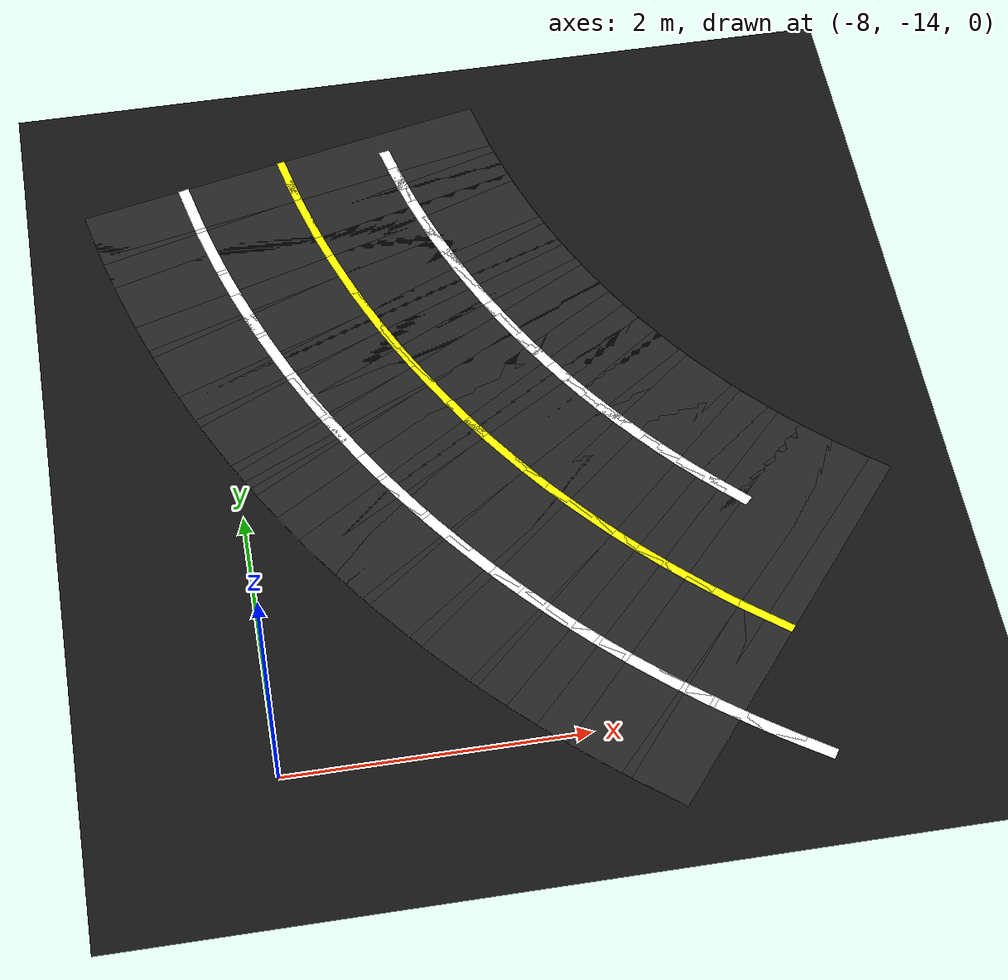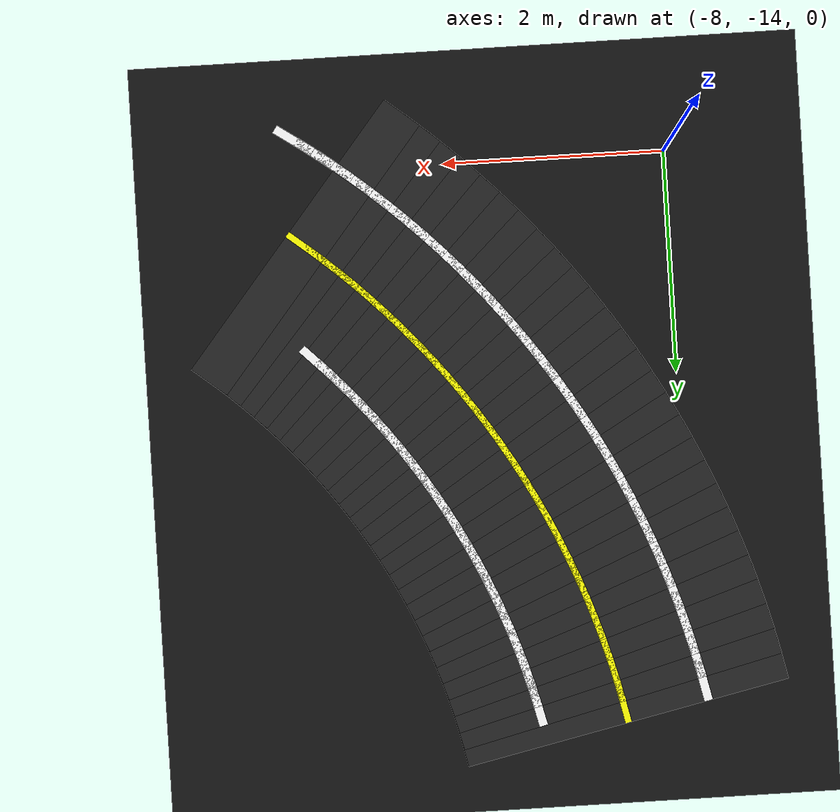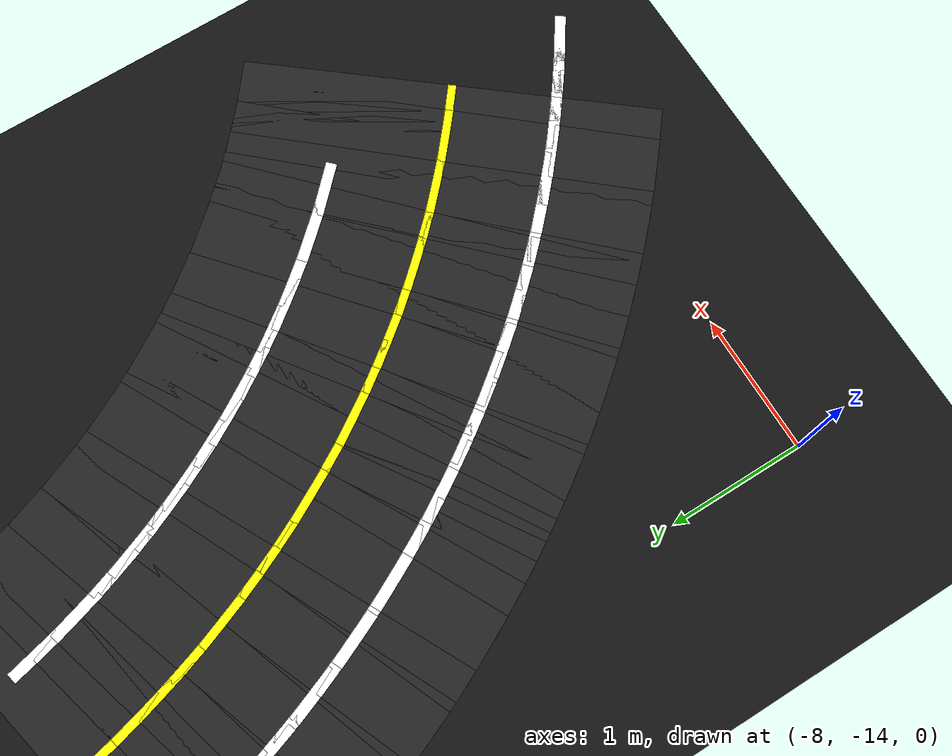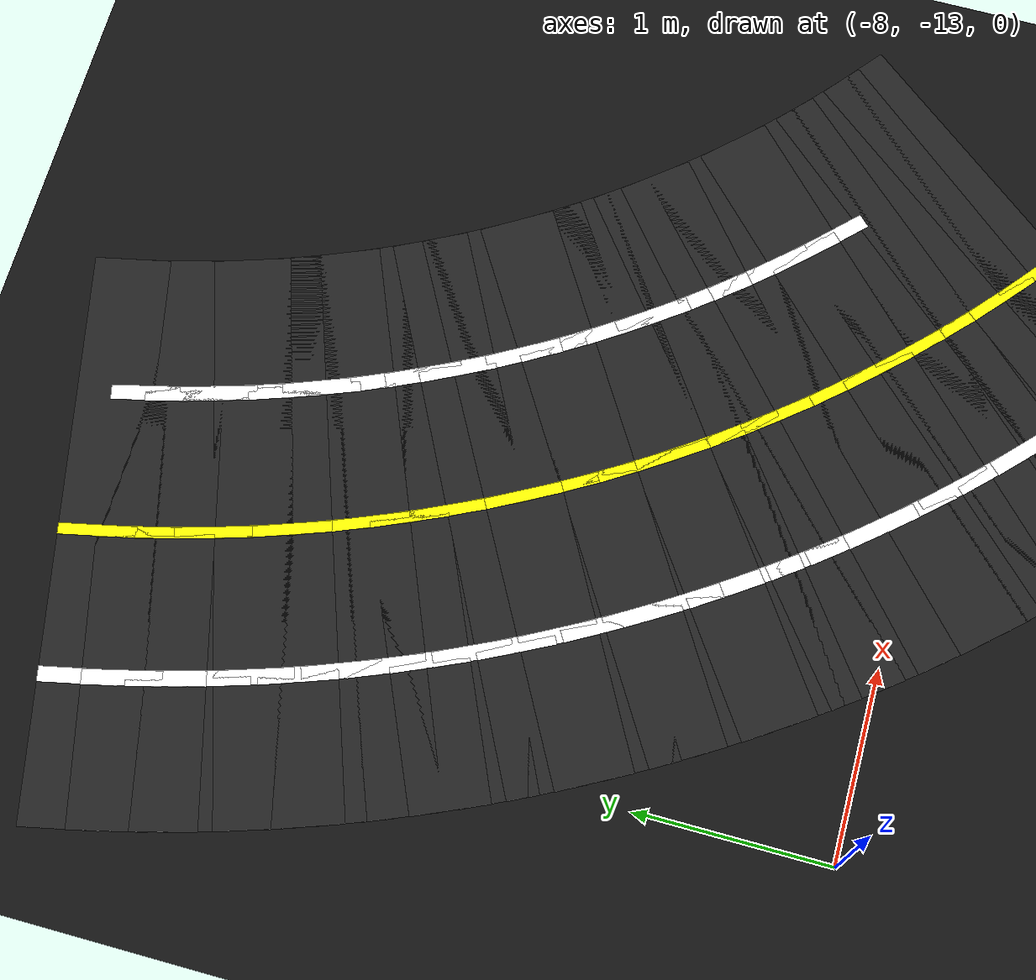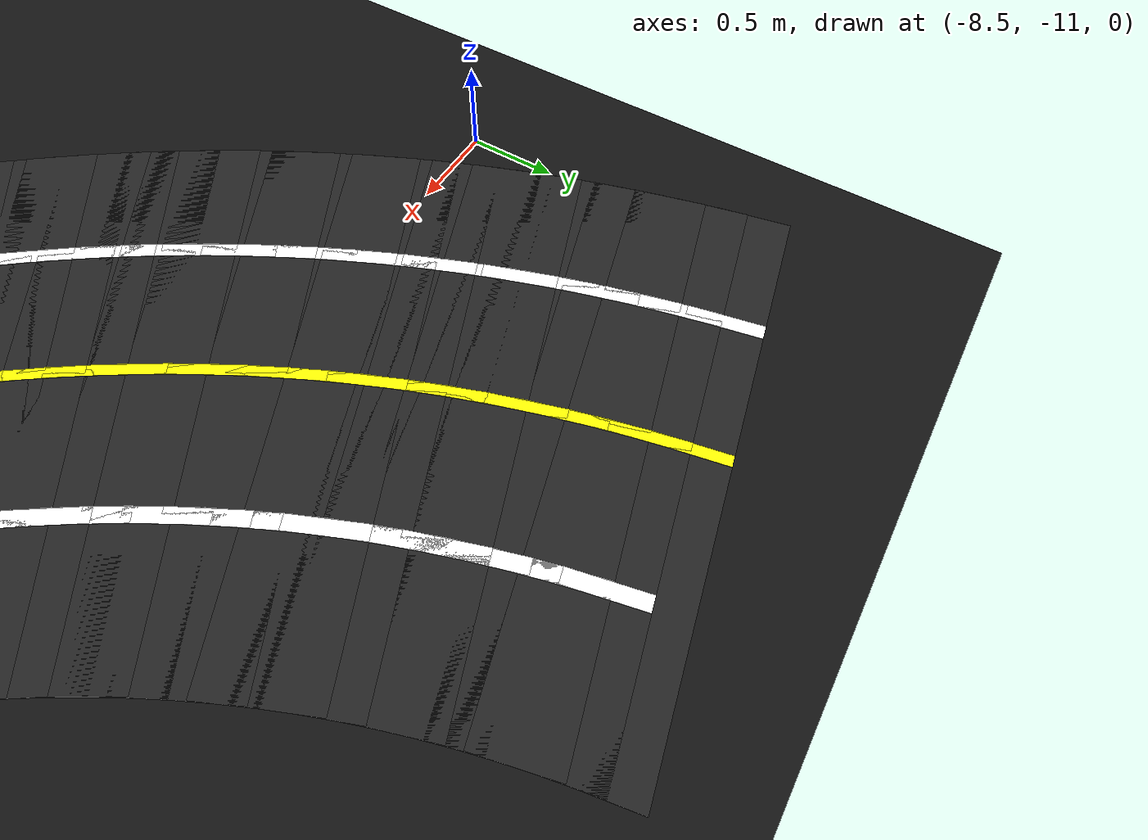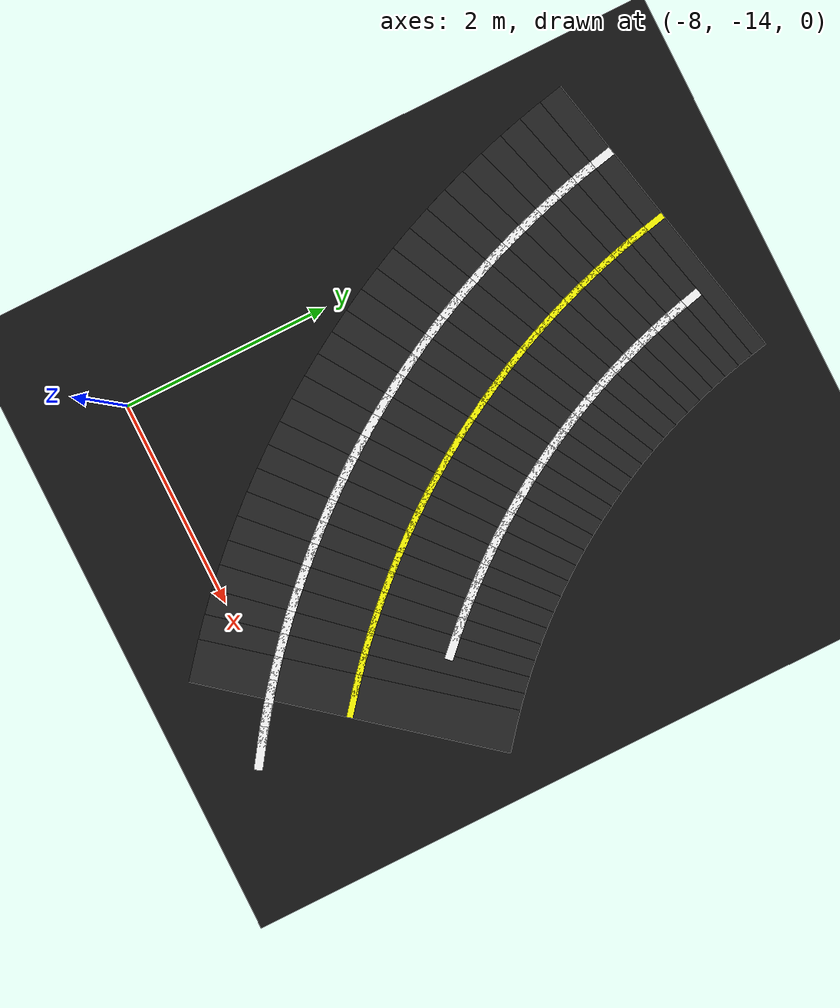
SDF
<sdf version="1.6">
 <world name="figure8_world">
  <model name="ground_plane">
   <static>true</static>
   <link name="link">
    <collision name="collision">
     <geometry><plane><normal>0 0 1</normal><size>120 120</size></plane></geometry>
    </collision>
    <visual name="visual">
     <geometry><plane><normal>0 0 1</normal><size>120 120</size></plane></geometry>
     <material><ambient>0.08 0.08 0.08 1</ambient><diffuse>0.08 0.08 0.08 1</diffuse></material>
    </visual>
   </link>
  </model>
  <model name="seg_01089">
   <static>true</static>
   <pose>-4.6729 -14.2990 0.0030 0 0 2.5395</pose>
   <link name="link">
    <collision name="collision"><geometry><box><size>0.4000 0.0800 0.002</size></box></geometry></collision>
    <visual name="visual">
     <geometry><box><size>0.4000 0.0800 0.002</size></box></geometry>
     <material><ambient>1 1 1 1</ambient><diffuse>1 1 1 1</diffuse></material>
    </visual>
   </link>
  </model>
  <model name="seg_01093">
   <static>true</static>
   <pose>-4.8492 -14.1744 0.0030 0 0 2.5133</pose>
   <link name="link">
    <collision name="collision"><geometry><box><size>0.4000 0.0800 0.002</size></box></geometry></collision>
    <visual name="visual">
     <geometry><box><size>0.4000 0.0800 0.002</size></box></geometry>
     <material><ambient>1 1 1 1</ambient><diffuse>1 1 1 1</diffuse></material>
    </visual>
   </link>
  </model>
  <model name="seg_01097">
   <static>true</static>
   <pose>-5.0223 -14.0452 0.0030 0 0 2.4871</pose>
   <link name="link">
    <collision name="collision"><geometry><box><size>0.4000 0.0800 0.002</size></box></geometry></collision>
    <visual name="visual">
     <geometry><box><size>0.4000 0.0800 0.002</size></box></geometry>
     <material><ambient>1 1 1 1</ambient><diffuse>1 1 1 1</diffuse></material>
    </visual>
   </link>
  </model>
  <model name="seg_01100">
   <static>true</static>
   <pose>-4.7199 -13.3286 0.0010 0 0 2.4609</pose>
   <link name="link">
    <collision name="collision"><geometry><box><size>0.4000 3.0000 0.002</size></box></geometry></collision>
    <visual name="visual">
     <geometry><box><size>0.4000 3.0000 0.002</size></box></geometry>
     <material><ambient>0.14 0.14 0.14 1</ambient><diffuse>0.14 0.14 0.14 1</diffuse></material>
    </visual>
   </link>
  </model>
  <model name="seg_01101">
   <static>true</static>
   <pose>-5.1919 -13.9115 0.0030 0 0 2.4609</pose>
   <link name="link">
    <collision name="collision"><geometry><box><size>0.4000 0.0800 0.002</size></box></geometry></collision>
    <visual name="visual">
     <geometry><box><size>0.4000 0.0800 0.002</size></box></geometry>
     <material><ambient>1 1 1 1</ambient><diffuse>1 1 1 1</diffuse></material>
    </visual>
   </link>
  </model>
  <model name="seg_01103">
   <static>true</static>
   <pose>-4.7199 -13.3286 0.0030 0 0 2.4609</pose>
   <link name="link">
    <collision name="collision"><geometry><box><size>0.4000 0.0600 0.002</size></box></geometry></collision>
    <visual name="visual">
     <geometry><box><size>0.4000 0.0600 0.002</size></box></geometry>
     <material><ambient>1 1 0 1</ambient><diffuse>1 1 0 1</diffuse></material>
    </visual>
   </link>
  </model>
  <model name="seg_01104">
   <static>true</static>
   <pose>-4.8709 -13.2030 0.0010 0 0 2.4347</pose>
   <link name="link">
    <collision name="collision"><geometry><box><size>0.4000 3.0000 0.002</size></box></geometry></collision>
    <visual name="visual">
     <geometry><box><size>0.4000 3.0000 0.002</size></box></geometry>
     <material><ambient>0.14 0.14 0.14 1</ambient><diffuse>0.14 0.14 0.14 1</diffuse></material>
    </visual>
   </link>
  </model>
  <model name="seg_01105">
   <static>true</static>
   <pose>-5.3579 -13.7733 0.0030 0 0 2.4347</pose>
   <link name="link">
    <collision name="collision"><geometry><box><size>0.4000 0.0800 0.002</size></box></geometry></collision>
    <visual name="visual">
     <geometry><box><size>0.4000 0.0800 0.002</size></box></geometry>
     <material><ambient>1 1 1 1</ambient><diffuse>1 1 1 1</diffuse></material>
    </visual>
   </link>
  </model>
  <model name="seg_01107">
   <static>true</static>
   <pose>-4.8709 -13.2030 0.0030 0 0 2.4347</pose>
   <link name="link">
    <collision name="collision"><geometry><box><size>0.4000 0.0600 0.002</size></box></geometry></collision>
    <visual name="visual">
     <geometry><box><size>0.4000 0.0600 0.002</size></box></geometry>
     <material><ambient>1 1 0 1</ambient><diffuse>1 1 0 1</diffuse></material>
    </visual>
   </link>
  </model>
  <model name="seg_01108">
   <static>true</static>
   <pose>-5.0185 -13.0736 0.0010 0 0 2.4086</pose>
   <link name="link">
    <collision name="collision"><geometry><box><size>0.4000 3.0000 0.002</size></box></geometry></collision>
    <visual name="visual">
     <geometry><box><size>0.4000 3.0000 0.002</size></box></geometry>
     <material><ambient>0.14 0.14 0.14 1</ambient><diffuse>0.14 0.14 0.14 1</diffuse></material>
    </visual>
   </link>
  </model>
  <model name="seg_01109">
   <static>true</static>
   <pose>-5.5203 -13.6309 0.0030 0 0 2.4086</pose>
   <link name="link">
    <collision name="collision"><geometry><box><size>0.4000 0.0800 0.002</size></box></geometry></collision>
    <visual name="visual">
     <geometry><box><size>0.4000 0.0800 0.002</size></box></geometry>
     <material><ambient>1 1 1 1</ambient><diffuse>1 1 1 1</diffuse></material>
    </visual>
   </link>
  </model>
  <model name="seg_01111">
   <static>true</static>
   <pose>-5.0185 -13.0736 0.0030 0 0 2.4086</pose>
   <link name="link">
    <collision name="collision"><geometry><box><size>0.4000 0.0600 0.002</size></box></geometry></collision>
    <visual name="visual">
     <geometry><box><size>0.4000 0.0600 0.002</size></box></geometry>
     <material><ambient>1 1 0 1</ambient><diffuse>1 1 0 1</diffuse></material>
    </visual>
   </link>
  </model>
  <model name="seg_01112">
   <static>true</static>
   <pose>-5.1627 -12.9403 0.0010 0 0 2.3824</pose>
   <link name="link">
    <collision name="collision"><geometry><box><size>0.4000 3.0000 0.002</size></box></geometry></collision>
    <visual name="visual">
     <geometry><box><size>0.4000 3.0000 0.002</size></box></geometry>
     <material><ambient>0.14 0.14 0.14 1</ambient><diffuse>0.14 0.14 0.14 1</diffuse></material>
    </visual>
   </link>
  </model>
  <model name="seg_01113">
   <static>true</static>
   <pose>-5.6789 -13.4843 0.0030 0 0 2.3824</pose>
   <link name="link">
    <collision name="collision"><geometry><box><size>0.4000 0.0800 0.002</size></box></geometry></collision>
    <visual name="visual">
     <geometry><box><size>0.4000 0.0800 0.002</size></box></geometry>
     <material><ambient>1 1 1 1</ambient><diffuse>1 1 1 1</diffuse></material>
    </visual>
   </link>
  </model>
  <model name="seg_01115">
   <static>true</static>
   <pose>-5.1627 -12.9403 0.0030 0 0 2.3824</pose>
   <link name="link">
    <collision name="collision"><geometry><box><size>0.4000 0.0600 0.002</size></box></geometry></collision>
    <visual name="visual">
     <geometry><box><size>0.4000 0.0600 0.002</size></box></geometry>
     <material><ambient>1 1 0 1</ambient><diffuse>1 1 0 1</diffuse></material>
    </visual>
   </link>
  </model>
  <model name="seg_01116">
   <static>true</static>
   <pose>-5.3033 -12.8033 0.0010 0 0 2.3562</pose>
   <link name="link">
    <collision name="collision"><geometry><box><size>0.4000 3.0000 0.002</size></box></geometry></collision>
    <visual name="visual">
     <geometry><box><size>0.4000 3.0000 0.002</size></box></geometry>
     <material><ambient>0.14 0.14 0.14 1</ambient><diffuse>0.14 0.14 0.14 1</diffuse></material>
    </visual>
   </link>
  </model>
  <model name="seg_01117">
   <static>true</static>
   <pose>-5.8336 -13.3336 0.0030 0 0 2.3562</pose>
   <link name="link">
    <collision name="collision"><geometry><box><size>0.4000 0.0800 0.002</size></box></geometry></collision>
    <visual name="visual">
     <geometry><box><size>0.4000 0.0800 0.002</size></box></geometry>
     <material><ambient>1 1 1 1</ambient><diffuse>1 1 1 1</diffuse></material>
    </visual>
   </link>
  </model>
  <model name="seg_01118">
   <static>true</static>
   <pose>-4.7730 -12.2730 0.0030 0 0 2.3562</pose>
   <link name="link">
    <collision name="collision"><geometry><box><size>0.4000 0.0800 0.002</size></box></geometry></collision>
    <visual name="visual">
     <geometry><box><size>0.4000 0.0800 0.002</size></box></geometry>
     <material><ambient>1 1 1 1</ambient><diffuse>1 1 1 1</diffuse></material>
    </visual>
   </link>
  </model>
  <model name="seg_01119">
   <static>true</static>
   <pose>-5.3033 -12.8033 0.0030 0 0 2.3562</pose>
   <link name="link">
    <collision name="collision"><geometry><box><size>0.4000 0.0600 0.002</size></box></geometry></collision>
    <visual name="visual">
     <geometry><box><size>0.4000 0.0600 0.002</size></box></geometry>
     <material><ambient>1 1 0 1</ambient><diffuse>1 1 0 1</diffuse></material>
    </visual>
   </link>
  </model>
  <model name="seg_01120">
   <static>true</static>
   <pose>-5.4403 -12.6627 0.0010 0 0 2.3300</pose>
   <link name="link">
    <collision name="collision"><geometry><box><size>0.4000 3.0000 0.002</size></box></geometry></collision>
    <visual name="visual">
     <geometry><box><size>0.4000 3.0000 0.002</size></box></geometry>
     <material><ambient>0.14 0.14 0.14 1</ambient><diffuse>0.14 0.14 0.14 1</diffuse></material>
    </visual>
   </link>
  </model>
  <model name="seg_01121">
   <static>true</static>
   <pose>-5.9843 -13.1789 0.0030 0 0 2.3300</pose>
   <link name="link">
    <collision name="collision"><geometry><box><size>0.4000 0.0800 0.002</size></box></geometry></collision>
    <visual name="visual">
     <geometry><box><size>0.4000 0.0800 0.002</size></box></geometry>
     <material><ambient>1 1 1 1</ambient><diffuse>1 1 1 1</diffuse></material>
    </visual>
   </link>
  </model>
  <model name="seg_01122">
   <static>true</static>
   <pose>-4.8963 -12.1464 0.0030 0 0 2.3300</pose>
   <link name="link">
    <collision name="collision"><geometry><box><size>0.4000 0.0800 0.002</size></box></geometry></collision>
    <visual name="visual">
     <geometry><box><size>0.4000 0.0800 0.002</size></box></geometry>
     <material><ambient>1 1 1 1</ambient><diffuse>1 1 1 1</diffuse></material>
    </visual>
   </link>
  </model>
  <model name="seg_01123">
   <static>true</static>
   <pose>-5.4403 -12.6627 0.0030 0 0 2.3300</pose>
   <link name="link">
    <collision name="collision"><geometry><box><size>0.4000 0.0600 0.002</size></box></geometry></collision>
    <visual name="visual">
     <geometry><box><size>0.4000 0.0600 0.002</size></box></geometry>
     <material><ambient>1 1 0 1</ambient><diffuse>1 1 0 1</diffuse></material>
    </visual>
   </link>
  </model>
  <model name="seg_01124">
   <static>true</static>
   <pose>-5.5736 -12.5185 0.0010 0 0 2.3038</pose>
   <link name="link">
    <collision name="collision"><geometry><box><size>0.4000 3.0000 0.002</size></box></geometry></collision>
    <visual name="visual">
     <geometry><box><size>0.4000 3.0000 0.002</size></box></geometry>
     <material><ambient>0.14 0.14 0.14 1</ambient><diffuse>0.14 0.14 0.14 1</diffuse></material>
    </visual>
   </link>
  </model>
  <model name="seg_01125">
   <static>true</static>
   <pose>-6.1309 -13.0203 0.0030 0 0 2.3038</pose>
   <link name="link">
    <collision name="collision"><geometry><box><size>0.4000 0.0800 0.002</size></box></geometry></collision>
    <visual name="visual">
     <geometry><box><size>0.4000 0.0800 0.002</size></box></geometry>
     <material><ambient>1 1 1 1</ambient><diffuse>1 1 1 1</diffuse></material>
    </visual>
   </link>
  </model>
  <model name="seg_01126">
   <static>true</static>
   <pose>-5.0162 -12.0166 0.0030 0 0 2.3038</pose>
   <link name="link">
    <collision name="collision"><geometry><box><size>0.4000 0.0800 0.002</size></box></geometry></collision>
    <visual name="visual">
     <geometry><box><size>0.4000 0.0800 0.002</size></box></geometry>
     <material><ambient>1 1 1 1</ambient><diffuse>1 1 1 1</diffuse></material>
    </visual>
   </link>
  </model>
  <model name="seg_01127">
   <static>true</static>
   <pose>-5.5736 -12.5185 0.0030 0 0 2.3038</pose>
   <link name="link">
    <collision name="collision"><geometry><box><size>0.4000 0.0600 0.002</size></box></geometry></collision>
    <visual name="visual">
     <geometry><box><size>0.4000 0.0600 0.002</size></box></geometry>
     <material><ambient>1 1 0 1</ambient><diffuse>1 1 0 1</diffuse></material>
    </visual>
   </link>
  </model>
  <model name="seg_01128">
   <static>true</static>
   <pose>-5.7030 -12.3709 0.0010 0 0 2.2777</pose>
   <link name="link">
    <collision name="collision"><geometry><box><size>0.4000 3.0000 0.002</size></box></geometry></collision>
    <visual name="visual">
     <geometry><box><size>0.4000 3.0000 0.002</size></box></geometry>
     <material><ambient>0.14 0.14 0.14 1</ambient><diffuse>0.14 0.14 0.14 1</diffuse></material>
    </visual>
   </link>
  </model>
  <model name="seg_01129">
   <static>true</static>
   <pose>-6.2733 -12.8579 0.0030 0 0 2.2777</pose>
   <link name="link">
    <collision name="collision"><geometry><box><size>0.4000 0.0800 0.002</size></box></geometry></collision>
    <visual name="visual">
     <geometry><box><size>0.4000 0.0800 0.002</size></box></geometry>
     <material><ambient>1 1 1 1</ambient><diffuse>1 1 1 1</diffuse></material>
    </visual>
   </link>
  </model>
  <model name="seg_01130">
   <static>true</static>
   <pose>-5.1327 -11.8838 0.0030 0 0 2.2777</pose>
   <link name="link">
    <collision name="collision"><geometry><box><size>0.4000 0.0800 0.002</size></box></geometry></collision>
    <visual name="visual">
     <geometry><box><size>0.4000 0.0800 0.002</size></box></geometry>
     <material><ambient>1 1 1 1</ambient><diffuse>1 1 1 1</diffuse></material>
    </visual>
   </link>
  </model>
  <model name="seg_01131">
   <static>true</static>
   <pose>-5.7030 -12.3709 0.0030 0 0 2.2777</pose>
   <link name="link">
    <collision name="collision"><geometry><box><size>0.4000 0.0600 0.002</size></box></geometry></collision>
    <visual name="visual">
     <geometry><box><size>0.4000 0.0600 0.002</size></box></geometry>
     <material><ambient>1 1 0 1</ambient><diffuse>1 1 0 1</diffuse></material>
    </visual>
   </link>
  </model>
  <model name="seg_01132">
   <static>true</static>
   <pose>-5.8286 -12.2199 0.0010 0 0 2.2515</pose>
   <link name="link">
    <collision name="collision"><geometry><box><size>0.4000 3.0000 0.002</size></box></geometry></collision>
    <visual name="visual">
     <geometry><box><size>0.4000 3.0000 0.002</size></box></geometry>
     <material><ambient>0.14 0.14 0.14 1</ambient><diffuse>0.14 0.14 0.14 1</diffuse></material>
    </visual>
   </link>
  </model>
  <model name="seg_01133">
   <static>true</static>
   <pose>-6.4115 -12.6919 0.0030 0 0 2.2515</pose>
   <link name="link">
    <collision name="collision"><geometry><box><size>0.4000 0.0800 0.002</size></box></geometry></collision>
    <visual name="visual">
     <geometry><box><size>0.4000 0.0800 0.002</size></box></geometry>
     <material><ambient>1 1 1 1</ambient><diffuse>1 1 1 1</diffuse></material>
    </visual>
   </link>
  </model>
  <model name="seg_01134">
   <static>true</static>
   <pose>-5.2457 -11.7479 0.0030 0 0 2.2515</pose>
   <link name="link">
    <collision name="collision"><geometry><box><size>0.4000 0.0800 0.002</size></box></geometry></collision>
    <visual name="visual">
     <geometry><box><size>0.4000 0.0800 0.002</size></box></geometry>
     <material><ambient>1 1 1 1</ambient><diffuse>1 1 1 1</diffuse></material>
    </visual>
   </link>
  </model>
  <model name="seg_01135">
   <static>true</static>
   <pose>-5.8286 -12.2199 0.0030 0 0 2.2515</pose>
   <link name="link">
    <collision name="collision"><geometry><box><size>0.4000 0.0600 0.002</size></box></geometry></collision>
    <visual name="visual">
     <geometry><box><size>0.4000 0.0600 0.002</size></box></geometry>
     <material><ambient>1 1 0 1</ambient><diffuse>1 1 0 1</diffuse></material>
    </visual>
   </link>
  </model>
  <model name="seg_01136">
   <static>true</static>
   <pose>-5.9502 -12.0657 0.0010 0 0 2.2253</pose>
   <link name="link">
    <collision name="collision"><geometry><box><size>0.4000 3.0000 0.002</size></box></geometry></collision>
    <visual name="visual">
     <geometry><box><size>0.4000 3.0000 0.002</size></box></geometry>
     <material><ambient>0.14 0.14 0.14 1</ambient><diffuse>0.14 0.14 0.14 1</diffuse></material>
    </visual>
   </link>
  </model>
  <model name="seg_01137">
   <static>true</static>
   <pose>-6.5452 -12.5223 0.0030 0 0 2.2253</pose>
   <link name="link">
    <collision name="collision"><geometry><box><size>0.4000 0.0800 0.002</size></box></geometry></collision>
    <visual name="visual">
     <geometry><box><size>0.4000 0.0800 0.002</size></box></geometry>
     <material><ambient>1 1 1 1</ambient><diffuse>1 1 1 1</diffuse></material>
    </visual>
   </link>
  </model>
  <model name="seg_01138">
   <static>true</static>
   <pose>-5.3551 -11.6091 0.0030 0 0 2.2253</pose>
   <link name="link">
    <collision name="collision"><geometry><box><size>0.4000 0.0800 0.002</size></box></geometry></collision>
    <visual name="visual">
     <geometry><box><size>0.4000 0.0800 0.002</size></box></geometry>
     <material><ambient>1 1 1 1</ambient><diffuse>1 1 1 1</diffuse></material>
    </visual>
   </link>
  </model>
  <model name="seg_01139">
   <static>true</static>
   <pose>-5.9502 -12.0657 0.0030 0 0 2.2253</pose>
   <link name="link">
    <collision name="collision"><geometry><box><size>0.4000 0.0600 0.002</size></box></geometry></collision>
    <visual name="visual">
     <geometry><box><size>0.4000 0.0600 0.002</size></box></geometry>
     <material><ambient>1 1 0 1</ambient><diffuse>1 1 0 1</diffuse></material>
    </visual>
   </link>
  </model>
  <model name="seg_01140">
   <static>true</static>
   <pose>-6.0676 -11.9084 0.0010 0 0 2.1991</pose>
   <link name="link">
    <collision name="collision"><geometry><box><size>0.4000 3.0000 0.002</size></box></geometry></collision>
    <visual name="visual">
     <geometry><box><size>0.4000 3.0000 0.002</size></box></geometry>
     <material><ambient>0.14 0.14 0.14 1</ambient><diffuse>0.14 0.14 0.14 1</diffuse></material>
    </visual>
   </link>
  </model>
  <model name="seg_01141">
   <static>true</static>
   <pose>-6.6744 -12.3492 0.0030 0 0 2.1991</pose>
   <link name="link">
    <collision name="collision"><geometry><box><size>0.4000 0.0800 0.002</size></box></geometry></collision>
    <visual name="visual">
     <geometry><box><size>0.4000 0.0800 0.002</size></box></geometry>
     <material><ambient>1 1 1 1</ambient><diffuse>1 1 1 1</diffuse></material>
    </visual>
   </link>
  </model>
  <model name="seg_01142">
   <static>true</static>
   <pose>-5.4609 -11.4676 0.0030 0 0 2.1991</pose>
   <link name="link">
    <collision name="collision"><geometry><box><size>0.4000 0.0800 0.002</size></box></geometry></collision>
    <visual name="visual">
     <geometry><box><size>0.4000 0.0800 0.002</size></box></geometry>
     <material><ambient>1 1 1 1</ambient><diffuse>1 1 1 1</diffuse></material>
    </visual>
   </link>
  </model>
  <model name="seg_01143">
   <static>true</static>
   <pose>-6.0676 -11.9084 0.0030 0 0 2.1991</pose>
   <link name="link">
    <collision name="collision"><geometry><box><size>0.4000 0.0600 0.002</size></box></geometry></collision>
    <visual name="visual">
     <geometry><box><size>0.4000 0.0600 0.002</size></box></geometry>
     <material><ambient>1 1 0 1</ambient><diffuse>1 1 0 1</diffuse></material>
    </visual>
   </link>
  </model>
  <model name="seg_01144">
   <static>true</static>
   <pose>-6.1809 -11.7480 0.0010 0 0 2.1729</pose>
   <link name="link">
    <collision name="collision"><geometry><box><size>0.4000 3.0000 0.002</size></box></geometry></collision>
    <visual name="visual">
     <geometry><box><size>0.4000 3.0000 0.002</size></box></geometry>
     <material><ambient>0.14 0.14 0.14 1</ambient><diffuse>0.14 0.14 0.14 1</diffuse></material>
    </visual>
   </link>
  </model>
  <model name="seg_01145">
   <static>true</static>
   <pose>-6.7990 -12.1729 0.0030 0 0 2.1729</pose>
   <link name="link">
    <collision name="collision"><geometry><box><size>0.4000 0.0800 0.002</size></box></geometry></collision>
    <visual name="visual">
     <geometry><box><size>0.4000 0.0800 0.002</size></box></geometry>
     <material><ambient>1 1 1 1</ambient><diffuse>1 1 1 1</diffuse></material>
    </visual>
   </link>
  </model>
  <model name="seg_01146">
   <static>true</static>
   <pose>-5.5629 -11.3232 0.0030 0 0 2.1729</pose>
   <link name="link">
    <collision name="collision"><geometry><box><size>0.4000 0.0800 0.002</size></box></geometry></collision>
    <visual name="visual">
     <geometry><box><size>0.4000 0.0800 0.002</size></box></geometry>
     <material><ambient>1 1 1 1</ambient><diffuse>1 1 1 1</diffuse></material>
    </visual>
   </link>
  </model>
  <model name="seg_01147">
   <static>true</static>
   <pose>-6.1809 -11.7480 0.0030 0 0 2.1729</pose>
   <link name="link">
    <collision name="collision"><geometry><box><size>0.4000 0.0600 0.002</size></box></geometry></collision>
    <visual name="visual">
     <geometry><box><size>0.4000 0.0600 0.002</size></box></geometry>
     <material><ambient>1 1 0 1</ambient><diffuse>1 1 0 1</diffuse></material>
    </visual>
   </link>
  </model>
  <model name="seg_01148">
   <static>true</static>
   <pose>-6.2900 -11.5848 0.0010 0 0 2.1468</pose>
   <link name="link">
    <collision name="collision"><geometry><box><size>0.4000 3.0000 0.002</size></box></geometry></collision>
    <visual name="visual">
     <geometry><box><size>0.4000 3.0000 0.002</size></box></geometry>
     <material><ambient>0.14 0.14 0.14 1</ambient><diffuse>0.14 0.14 0.14 1</diffuse></material>
    </visual>
   </link>
  </model>
  <model name="seg_01149">
   <static>true</static>
   <pose>-6.9190 -11.9933 0.0030 0 0 2.1468</pose>
   <link name="link">
    <collision name="collision"><geometry><box><size>0.4000 0.0800 0.002</size></box></geometry></collision>
    <visual name="visual">
     <geometry><box><size>0.4000 0.0800 0.002</size></box></geometry>
     <material><ambient>1 1 1 1</ambient><diffuse>1 1 1 1</diffuse></material>
    </visual>
   </link>
  </model>
  <model name="seg_01150">
   <static>true</static>
   <pose>-5.6610 -11.1763 0.0030 0 0 2.1468</pose>
   <link name="link">
    <collision name="collision"><geometry><box><size>0.4000 0.0800 0.002</size></box></geometry></collision>
    <visual name="visual">
     <geometry><box><size>0.4000 0.0800 0.002</size></box></geometry>
     <material><ambient>1 1 1 1</ambient><diffuse>1 1 1 1</diffuse></material>
    </visual>
   </link>
  </model>
  <model name="seg_01151">
   <static>true</static>
   <pose>-6.2900 -11.5848 0.0030 0 0 2.1468</pose>
   <link name="link">
    <collision name="collision"><geometry><box><size>0.4000 0.0600 0.002</size></box></geometry></collision>
    <visual name="visual">
     <geometry><box><size>0.4000 0.0600 0.002</size></box></geometry>
     <material><ambient>1 1 0 1</ambient><diffuse>1 1 0 1</diffuse></material>
    </visual>
   </link>
  </model>
  <model name="seg_01152">
   <static>true</static>
   <pose>-6.3948 -11.4187 0.0010 0 0 2.1206</pose>
   <link name="link">
    <collision name="collision"><geometry><box><size>0.4000 3.0000 0.002</size></box></geometry></collision>
    <visual name="visual">
     <geometry><box><size>0.4000 3.0000 0.002</size></box></geometry>
     <material><ambient>0.14 0.14 0.14 1</ambient><diffuse>0.14 0.14 0.14 1</diffuse></material>
    </visual>
   </link>
  </model>
  <model name="seg_01153">
   <static>true</static>
   <pose>-7.0343 -11.8106 0.0030 0 0 2.1206</pose>
   <link name="link">
    <collision name="collision"><geometry><box><size>0.4000 0.0800 0.002</size></box></geometry></collision>
    <visual name="visual">
     <geometry><box><size>0.4000 0.0800 0.002</size></box></geometry>
     <material><ambient>1 1 1 1</ambient><diffuse>1 1 1 1</diffuse></material>
    </visual>
   </link>
  </model>
  <model name="seg_01154">
   <static>true</static>
   <pose>-5.7553 -11.0269 0.0030 0 0 2.1206</pose>
   <link name="link">
    <collision name="collision"><geometry><box><size>0.4000 0.0800 0.002</size></box></geometry></collision>
    <visual name="visual">
     <geometry><box><size>0.4000 0.0800 0.002</size></box></geometry>
     <material><ambient>1 1 1 1</ambient><diffuse>1 1 1 1</diffuse></material>
    </visual>
   </link>
  </model>
  <model name="seg_01155">
   <static>true</static>
   <pose>-6.3948 -11.4187 0.0030 0 0 2.1206</pose>
   <link name="link">
    <collision name="collision"><geometry><box><size>0.4000 0.0600 0.002</size></box></geometry></collision>
    <visual name="visual">
     <geometry><box><size>0.4000 0.0600 0.002</size></box></geometry>
     <material><ambient>1 1 0 1</ambient><diffuse>1 1 0 1</diffuse></material>
    </visual>
   </link>
  </model>
  <model name="seg_01156">
   <static>true</static>
   <pose>-6.4952 -11.2500 0.0010 0 0 2.0944</pose>
   <link name="link">
    <collision name="collision"><geometry><box><size>0.4000 3.0000 0.002</size></box></geometry></collision>
    <visual name="visual">
     <geometry><box><size>0.4000 3.0000 0.002</size></box></geometry>
     <material><ambient>0.14 0.14 0.14 1</ambient><diffuse>0.14 0.14 0.14 1</diffuse></material>
    </visual>
   </link>
  </model>
  <model name="seg_01157">
   <static>true</static>
   <pose>-7.1447 -11.6250 0.0030 0 0 2.0944</pose>
   <link name="link">
    <collision name="collision"><geometry><box><size>0.4000 0.0800 0.002</size></box></geometry></collision>
    <visual name="visual">
     <geometry><box><size>0.4000 0.0800 0.002</size></box></geometry>
     <material><ambient>1 1 1 1</ambient><diffuse>1 1 1 1</diffuse></material>
    </visual>
   </link>
  </model>
  <model name="seg_01158">
   <static>true</static>
   <pose>-5.8457 -10.8750 0.0030 0 0 2.0944</pose>
   <link name="link">
    <collision name="collision"><geometry><box><size>0.4000 0.0800 0.002</size></box></geometry></collision>
    <visual name="visual">
     <geometry><box><size>0.4000 0.0800 0.002</size></box></geometry>
     <material><ambient>1 1 1 1</ambient><diffuse>1 1 1 1</diffuse></material>
    </visual>
   </link>
  </model>
  <model name="seg_01159">
   <static>true</static>
   <pose>-6.4952 -11.2500 0.0030 0 0 2.0944</pose>
   <link name="link">
    <collision name="collision"><geometry><box><size>0.4000 0.0600 0.002</size></box></geometry></collision>
    <visual name="visual">
     <geometry><box><size>0.4000 0.0600 0.002</size></box></geometry>
     <material><ambient>1 1 0 1</ambient><diffuse>1 1 0 1</diffuse></material>
    </visual>
   </link>
  </model>
  <model name="seg_01160">
   <static>true</static>
   <pose>-6.5911 -11.0787 0.0010 0 0 2.0682</pose>
   <link name="link">
    <collision name="collision"><geometry><box><size>0.4000 3.0000 0.002</size></box></geometry></collision>
    <visual name="visual">
     <geometry><box><size>0.4000 3.0000 0.002</size></box></geometry>
     <material><ambient>0.14 0.14 0.14 1</ambient><diffuse>0.14 0.14 0.14 1</diffuse></material>
    </visual>
   </link>
  </model>
  <model name="seg_01161">
   <static>true</static>
   <pose>-7.2502 -11.4366 0.0030 0 0 2.0682</pose>
   <link name="link">
    <collision name="collision"><geometry><box><size>0.4000 0.0800 0.002</size></box></geometry></collision>
    <visual name="visual">
     <geometry><box><size>0.4000 0.0800 0.002</size></box></geometry>
     <material><ambient>1 1 1 1</ambient><diffuse>1 1 1 1</diffuse></material>
    </visual>
   </link>
  </model>
  <model name="seg_01162">
   <static>true</static>
   <pose>-5.9320 -10.7208 0.0030 0 0 2.0682</pose>
   <link name="link">
    <collision name="collision"><geometry><box><size>0.4000 0.0800 0.002</size></box></geometry></collision>
    <visual name="visual">
     <geometry><box><size>0.4000 0.0800 0.002</size></box></geometry>
     <material><ambient>1 1 1 1</ambient><diffuse>1 1 1 1</diffuse></material>
    </visual>
   </link>
  </model>
  <model name="seg_01163">
   <static>true</static>
   <pose>-6.5911 -11.0787 0.0030 0 0 2.0682</pose>
   <link name="link">
    <collision name="collision"><geometry><box><size>0.4000 0.0600 0.002</size></box></geometry></collision>
    <visual name="visual">
     <geometry><box><size>0.4000 0.0600 0.002</size></box></geometry>
     <material><ambient>1 1 0 1</ambient><diffuse>1 1 0 1</diffuse></material>
    </visual>
   </link>
  </model>
  <model name="seg_01164">
   <static>true</static>
   <pose>-6.6825 -10.9049 0.0010 0 0 2.0420</pose>
   <link name="link">
    <collision name="collision"><geometry><box><size>0.4000 3.0000 0.002</size></box></geometry></collision>
    <visual name="visual">
     <geometry><box><size>0.4000 3.0000 0.002</size></box></geometry>
     <material><ambient>0.14 0.14 0.14 1</ambient><diffuse>0.14 0.14 0.14 1</diffuse></material>
    </visual>
   </link>
  </model>
  <model name="seg_01165">
   <static>true</static>
   <pose>-7.3508 -11.2454 0.0030 0 0 2.0420</pose>
   <link name="link">
    <collision name="collision"><geometry><box><size>0.4000 0.0800 0.002</size></box></geometry></collision>
    <visual name="visual">
     <geometry><box><size>0.4000 0.0800 0.002</size></box></geometry>
     <material><ambient>1 1 1 1</ambient><diffuse>1 1 1 1</diffuse></material>
    </visual>
   </link>
  </model>
  <model name="seg_01166">
   <static>true</static>
   <pose>-6.0143 -10.5644 0.0030 0 0 2.0420</pose>
   <link name="link">
    <collision name="collision"><geometry><box><size>0.4000 0.0800 0.002</size></box></geometry></collision>
    <visual name="visual">
     <geometry><box><size>0.4000 0.0800 0.002</size></box></geometry>
     <material><ambient>1 1 1 1</ambient><diffuse>1 1 1 1</diffuse></material>
    </visual>
   </link>
  </model>
  <model name="seg_01167">
   <static>true</static>
   <pose>-6.6825 -10.9049 0.0030 0 0 2.0420</pose>
   <link name="link">
    <collision name="collision"><geometry><box><size>0.4000 0.0600 0.002</size></box></geometry></collision>
    <visual name="visual">
     <geometry><box><size>0.4000 0.0600 0.002</size></box></geometry>
     <material><ambient>1 1 0 1</ambient><diffuse>1 1 0 1</diffuse></material>
    </visual>
   </link>
  </model>
  <model name="seg_01168">
   <static>true</static>
   <pose>-6.7694 -10.7288 0.0010 0 0 2.0159</pose>
   <link name="link">
    <collision name="collision"><geometry><box><size>0.4000 3.0000 0.002</size></box></geometry></collision>
    <visual name="visual">
     <geometry><box><size>0.4000 3.0000 0.002</size></box></geometry>
     <material><ambient>0.14 0.14 0.14 1</ambient><diffuse>0.14 0.14 0.14 1</diffuse></material>
    </visual>
   </link>
  </model>
  <model name="seg_01169">
   <static>true</static>
   <pose>-7.4463 -11.0517 0.0030 0 0 2.0159</pose>
   <link name="link">
    <collision name="collision"><geometry><box><size>0.4000 0.0800 0.002</size></box></geometry></collision>
    <visual name="visual">
     <geometry><box><size>0.4000 0.0800 0.002</size></box></geometry>
     <material><ambient>1 1 1 1</ambient><diffuse>1 1 1 1</diffuse></material>
    </visual>
   </link>
  </model>
  <model name="seg_01170">
   <static>true</static>
   <pose>-6.0925 -10.4059 0.0030 0 0 2.0159</pose>
   <link name="link">
    <collision name="collision"><geometry><box><size>0.4000 0.0800 0.002</size></box></geometry></collision>
    <visual name="visual">
     <geometry><box><size>0.4000 0.0800 0.002</size></box></geometry>
     <material><ambient>1 1 1 1</ambient><diffuse>1 1 1 1</diffuse></material>
    </visual>
   </link>
  </model>
  <model name="seg_01171">
   <static>true</static>
   <pose>-6.7694 -10.7288 0.0030 0 0 2.0159</pose>
   <link name="link">
    <collision name="collision"><geometry><box><size>0.4000 0.0600 0.002</size></box></geometry></collision>
    <visual name="visual">
     <geometry><box><size>0.4000 0.0600 0.002</size></box></geometry>
     <material><ambient>1 1 0 1</ambient><diffuse>1 1 0 1</diffuse></material>
    </visual>
   </link>
  </model>
  <model name="seg_01172">
   <static>true</static>
   <pose>-6.8516 -10.5505 0.0010 0 0 1.9897</pose>
   <link name="link">
    <collision name="collision"><geometry><box><size>0.4000 3.0000 0.002</size></box></geometry></collision>
    <visual name="visual">
     <geometry><box><size>0.4000 3.0000 0.002</size></box></geometry>
     <material><ambient>0.14 0.14 0.14 1</ambient><diffuse>0.14 0.14 0.14 1</diffuse></material>
    </visual>
   </link>
  </model>
  <model name="seg_01173">
   <static>true</static>
   <pose>-7.5368 -10.8556 0.0030 0 0 1.9897</pose>
   <link name="link">
    <collision name="collision"><geometry><box><size>0.4000 0.0800 0.002</size></box></geometry></collision>
    <visual name="visual">
     <geometry><box><size>0.4000 0.0800 0.002</size></box></geometry>
     <material><ambient>1 1 1 1</ambient><diffuse>1 1 1 1</diffuse></material>
    </visual>
   </link>
  </model>
  <model name="seg_01174">
   <static>true</static>
   <pose>-6.1664 -10.2455 0.0030 0 0 1.9897</pose>
   <link name="link">
    <collision name="collision"><geometry><box><size>0.4000 0.0800 0.002</size></box></geometry></collision>
    <visual name="visual">
     <geometry><box><size>0.4000 0.0800 0.002</size></box></geometry>
     <material><ambient>1 1 1 1</ambient><diffuse>1 1 1 1</diffuse></material>
    </visual>
   </link>
  </model>
  <model name="seg_01175">
   <static>true</static>
   <pose>-6.8516 -10.5505 0.0030 0 0 1.9897</pose>
   <link name="link">
    <collision name="collision"><geometry><box><size>0.4000 0.0600 0.002</size></box></geometry></collision>
    <visual name="visual">
     <geometry><box><size>0.4000 0.0600 0.002</size></box></geometry>
     <material><ambient>1 1 0 1</ambient><diffuse>1 1 0 1</diffuse></material>
    </visual>
   </link>
  </model>
  <model name="seg_01176">
   <static>true</static>
   <pose>-6.9291 -10.3701 0.0010 0 0 1.9635</pose>
   <link name="link">
    <collision name="collision"><geometry><box><size>0.4000 3.0000 0.002</size></box></geometry></collision>
    <visual name="visual">
     <geometry><box><size>0.4000 3.0000 0.002</size></box></geometry>
     <material><ambient>0.14 0.14 0.14 1</ambient><diffuse>0.14 0.14 0.14 1</diffuse></material>
    </visual>
   </link>
  </model>
  <model name="seg_01177">
   <static>true</static>
   <pose>-7.6220 -10.6571 0.0030 0 0 1.9635</pose>
   <link name="link">
    <collision name="collision"><geometry><box><size>0.4000 0.0800 0.002</size></box></geometry></collision>
    <visual name="visual">
     <geometry><box><size>0.4000 0.0800 0.002</size></box></geometry>
     <material><ambient>1 1 1 1</ambient><diffuse>1 1 1 1</diffuse></material>
    </visual>
   </link>
  </model>
  <model name="seg_01178">
   <static>true</static>
   <pose>-6.2362 -10.0831 0.0030 0 0 1.9635</pose>
   <link name="link">
    <collision name="collision"><geometry><box><size>0.4000 0.0800 0.002</size></box></geometry></collision>
    <visual name="visual">
     <geometry><box><size>0.4000 0.0800 0.002</size></box></geometry>
     <material><ambient>1 1 1 1</ambient><diffuse>1 1 1 1</diffuse></material>
    </visual>
   </link>
  </model>
  <model name="seg_01179">
   <static>true</static>
   <pose>-6.9291 -10.3701 0.0030 0 0 1.9635</pose>
   <link name="link">
    <collision name="collision"><geometry><box><size>0.4000 0.0600 0.002</size></box></geometry></collision>
    <visual name="visual">
     <geometry><box><size>0.4000 0.0600 0.002</size></box></geometry>
     <material><ambient>1 1 0 1</ambient><diffuse>1 1 0 1</diffuse></material>
    </visual>
   </link>
  </model>
  <model name="seg_01180">
   <static>true</static>
   <pose>-7.0019 -10.1878 0.0010 0 0 1.9373</pose>
   <link name="link">
    <collision name="collision"><geometry><box><size>0.4000 3.0000 0.002</size></box></geometry></collision>
    <visual name="visual">
     <geometry><box><size>0.4000 3.0000 0.002</size></box></geometry>
     <material><ambient>0.14 0.14 0.14 1</ambient><diffuse>0.14 0.14 0.14 1</diffuse></material>
    </visual>
   </link>
  </model>
  <model name="seg_01181">
   <static>true</static>
   <pose>-7.7020 -10.4565 0.0030 0 0 1.9373</pose>
   <link name="link">
    <collision name="collision"><geometry><box><size>0.4000 0.0800 0.002</size></box></geometry></collision>
    <visual name="visual">
     <geometry><box><size>0.4000 0.0800 0.002</size></box></geometry>
     <material><ambient>1 1 1 1</ambient><diffuse>1 1 1 1</diffuse></material>
    </visual>
   </link>
  </model>
  <model name="seg_01182">
   <static>true</static>
   <pose>-6.3017 -9.9190 0.0030 0 0 1.9373</pose>
   <link name="link">
    <collision name="collision"><geometry><box><size>0.4000 0.0800 0.002</size></box></geometry></collision>
    <visual name="visual">
     <geometry><box><size>0.4000 0.0800 0.002</size></box></geometry>
     <material><ambient>1 1 1 1</ambient><diffuse>1 1 1 1</diffuse></material>
    </visual>
   </link>
  </model>
  <model name="seg_01183">
   <static>true</static>
   <pose>-7.0019 -10.1878 0.0030 0 0 1.9373</pose>
   <link name="link">
    <collision name="collision"><geometry><box><size>0.4000 0.0600 0.002</size></box></geometry></collision>
    <visual name="visual">
     <geometry><box><size>0.4000 0.0600 0.002</size></box></geometry>
     <material><ambient>1 1 0 1</ambient><diffuse>1 1 0 1</diffuse></material>
    </visual>
   </link>
  </model>
  <model name="seg_01184">
   <static>true</static>
   <pose>-7.0698 -10.0036 0.0010 0 0 1.9111</pose>
   <link name="link">
    <collision name="collision"><geometry><box><size>0.4000 3.0000 0.002</size></box></geometry></collision>
    <visual name="visual">
     <geometry><box><size>0.4000 3.0000 0.002</size></box></geometry>
     <material><ambient>0.14 0.14 0.14 1</ambient><diffuse>0.14 0.14 0.14 1</diffuse></material>
    </visual>
   </link>
  </model>
  <model name="seg_01185">
   <static>true</static>
   <pose>-7.7768 -10.2539 0.0030 0 0 1.9111</pose>
   <link name="link">
    <collision name="collision"><geometry><box><size>0.4000 0.0800 0.002</size></box></geometry></collision>
    <visual name="visual">
     <geometry><box><size>0.4000 0.0800 0.002</size></box></geometry>
     <material><ambient>1 1 1 1</ambient><diffuse>1 1 1 1</diffuse></material>
    </visual>
   </link>
  </model>
  <model name="seg_01186">
   <static>true</static>
   <pose>-6.3628 -9.7532 0.0030 0 0 1.9111</pose>
   <link name="link">
    <collision name="collision"><geometry><box><size>0.4000 0.0800 0.002</size></box></geometry></collision>
    <visual name="visual">
     <geometry><box><size>0.4000 0.0800 0.002</size></box></geometry>
     <material><ambient>1 1 1 1</ambient><diffuse>1 1 1 1</diffuse></material>
    </visual>
   </link>
  </model>
  <model name="seg_01187">
   <static>true</static>
   <pose>-7.0698 -10.0036 0.0030 0 0 1.9111</pose>
   <link name="link">
    <collision name="collision"><geometry><box><size>0.4000 0.0600 0.002</size></box></geometry></collision>
    <visual name="visual">
     <geometry><box><size>0.4000 0.0600 0.002</size></box></geometry>
     <material><ambient>1 1 0 1</ambient><diffuse>1 1 0 1</diffuse></material>
    </visual>
   </link>
  </model>
  <model name="seg_01188">
   <static>true</static>
   <pose>-7.1329 -9.8176 0.0010 0 0 1.8850</pose>
   <link name="link">
    <collision name="collision"><geometry><box><size>0.4000 3.0000 0.002</size></box></geometry></collision>
    <visual name="visual">
     <geometry><box><size>0.4000 3.0000 0.002</size></box></geometry>
     <material><ambient>0.14 0.14 0.14 1</ambient><diffuse>0.14 0.14 0.14 1</diffuse></material>
    </visual>
   </link>
  </model>
  <model name="seg_01189">
   <static>true</static>
   <pose>-7.8462 -10.0494 0.0030 0 0 1.8850</pose>
   <link name="link">
    <collision name="collision"><geometry><box><size>0.4000 0.0800 0.002</size></box></geometry></collision>
    <visual name="visual">
     <geometry><box><size>0.4000 0.0800 0.002</size></box></geometry>
     <material><ambient>1 1 1 1</ambient><diffuse>1 1 1 1</diffuse></material>
    </visual>
   </link>
  </model>
  <model name="seg_01190">
   <static>true</static>
   <pose>-6.4196 -9.5859 0.0030 0 0 1.8850</pose>
   <link name="link">
    <collision name="collision"><geometry><box><size>0.4000 0.0800 0.002</size></box></geometry></collision>
    <visual name="visual">
     <geometry><box><size>0.4000 0.0800 0.002</size></box></geometry>
     <material><ambient>1 1 1 1</ambient><diffuse>1 1 1 1</diffuse></material>
    </visual>
   </link>
  </model>
  <model name="seg_01191">
   <static>true</static>
   <pose>-7.1329 -9.8176 0.0030 0 0 1.8850</pose>
   <link name="link">
    <collision name="collision"><geometry><box><size>0.4000 0.0600 0.002</size></box></geometry></collision>
    <visual name="visual">
     <geometry><box><size>0.4000 0.0600 0.002</size></box></geometry>
     <material><ambient>1 1 0 1</ambient><diffuse>1 1 0 1</diffuse></material>
    </visual>
   </link>
  </model>
  <model name="seg_01192">
   <static>true</static>
   <pose>-7.1911 -9.6301 0.0010 0 0 1.8588</pose>
   <link name="link">
    <collision name="collision"><geometry><box><size>0.4000 3.0000 0.002</size></box></geometry></collision>
    <visual name="visual">
     <geometry><box><size>0.4000 3.0000 0.002</size></box></geometry>
     <material><ambient>0.14 0.14 0.14 1</ambient><diffuse>0.14 0.14 0.14 1</diffuse></material>
    </visual>
   </link>
  </model>
  <model name="seg_01193">
   <static>true</static>
   <pose>-7.9103 -9.8431 0.0030 0 0 1.8588</pose>
   <link name="link">
    <collision name="collision"><geometry><box><size>0.4000 0.0800 0.002</size></box></geometry></collision>
    <visual name="visual">
     <geometry><box><size>0.4000 0.0800 0.002</size></box></geometry>
     <material><ambient>1 1 1 1</ambient><diffuse>1 1 1 1</diffuse></material>
    </visual>
   </link>
  </model>
  <model name="seg_01194">
   <static>true</static>
   <pose>-6.4720 -9.4171 0.0030 0 0 1.8588</pose>
   <link name="link">
    <collision name="collision"><geometry><box><size>0.4000 0.0800 0.002</size></box></geometry></collision>
    <visual name="visual">
     <geometry><box><size>0.4000 0.0800 0.002</size></box></geometry>
     <material><ambient>1 1 1 1</ambient><diffuse>1 1 1 1</diffuse></material>
    </visual>
   </link>
  </model>
  <model name="seg_01195">
   <static>true</static>
   <pose>-7.1911 -9.6301 0.0030 0 0 1.8588</pose>
   <link name="link">
    <collision name="collision"><geometry><box><size>0.4000 0.0600 0.002</size></box></geometry></collision>
    <visual name="visual">
     <geometry><box><size>0.4000 0.0600 0.002</size></box></geometry>
     <material><ambient>1 1 0 1</ambient><diffuse>1 1 0 1</diffuse></material>
    </visual>
   </link>
  </model>
  <model name="seg_01196">
   <static>true</static>
   <pose>-7.2444 -9.4411 0.0010 0 0 1.8326</pose>
   <link name="link">
    <collision name="collision"><geometry><box><size>0.4000 3.0000 0.002</size></box></geometry></collision>
    <visual name="visual">
     <geometry><box><size>0.4000 3.0000 0.002</size></box></geometry>
     <material><ambient>0.14 0.14 0.14 1</ambient><diffuse>0.14 0.14 0.14 1</diffuse></material>
    </visual>
   </link>
  </model>
  <model name="seg_01197">
   <static>true</static>
   <pose>-7.9689 -9.6353 0.0030 0 0 1.8326</pose>
   <link name="link">
    <collision name="collision"><geometry><box><size>0.4000 0.0800 0.002</size></box></geometry></collision>
    <visual name="visual">
     <geometry><box><size>0.4000 0.0800 0.002</size></box></geometry>
     <material><ambient>1 1 1 1</ambient><diffuse>1 1 1 1</diffuse></material>
    </visual>
   </link>
  </model>
  <model name="seg_01198">
   <static>true</static>
   <pose>-6.5200 -9.2470 0.0030 0 0 1.8326</pose>
   <link name="link">
    <collision name="collision"><geometry><box><size>0.4000 0.0800 0.002</size></box></geometry></collision>
    <visual name="visual">
     <geometry><box><size>0.4000 0.0800 0.002</size></box></geometry>
     <material><ambient>1 1 1 1</ambient><diffuse>1 1 1 1</diffuse></material>
    </visual>
   </link>
  </model>
  <model name="seg_01199">
   <static>true</static>
   <pose>-7.2444 -9.4411 0.0030 0 0 1.8326</pose>
   <link name="link">
    <collision name="collision"><geometry><box><size>0.4000 0.0600 0.002</size></box></geometry></collision>
    <visual name="visual">
     <geometry><box><size>0.4000 0.0600 0.002</size></box></geometry>
     <material><ambient>1 1 0 1</ambient><diffuse>1 1 0 1</diffuse></material>
    </visual>
   </link>
  </model>
  <model name="seg_01200">
   <static>true</static>
   <pose>-7.2928 -9.2508 0.0010 0 0 1.8064</pose>
   <link name="link">
    <collision name="collision"><geometry><box><size>0.4000 3.0000 0.002</size></box></geometry></collision>
    <visual name="visual">
     <geometry><box><size>0.4000 3.0000 0.002</size></box></geometry>
     <material><ambient>0.14 0.14 0.14 1</ambient><diffuse>0.14 0.14 0.14 1</diffuse></material>
    </visual>
   </link>
  </model>
  <model name="seg_01201">
   <static>true</static>
   <pose>-8.0221 -9.4259 0.0030 0 0 1.8064</pose>
   <link name="link">
    <collision name="collision"><geometry><box><size>0.4000 0.0800 0.002</size></box></geometry></collision>
    <visual name="visual">
     <geometry><box><size>0.4000 0.0800 0.002</size></box></geometry>
     <material><ambient>1 1 1 1</ambient><diffuse>1 1 1 1</diffuse></material>
    </visual>
   </link>
  </model>
  <model name="seg_01202">
   <static>true</static>
   <pose>-6.5635 -9.0758 0.0030 0 0 1.8064</pose>
   <link name="link">
    <collision name="collision"><geometry><box><size>0.4000 0.0800 0.002</size></box></geometry></collision>
    <visual name="visual">
     <geometry><box><size>0.4000 0.0800 0.002</size></box></geometry>
     <material><ambient>1 1 1 1</ambient><diffuse>1 1 1 1</diffuse></material>
    </visual>
   </link>
  </model>
  <model name="seg_01203">
   <static>true</static>
   <pose>-7.2928 -9.2508 0.0030 0 0 1.8064</pose>
   <link name="link">
    <collision name="collision"><geometry><box><size>0.4000 0.0600 0.002</size></box></geometry></collision>
    <visual name="visual">
     <geometry><box><size>0.4000 0.0600 0.002</size></box></geometry>
     <material><ambient>1 1 0 1</ambient><diffuse>1 1 0 1</diffuse></material>
    </visual>
   </link>
  </model>
  <model name="seg_01204">
   <static>true</static>
   <pose>-7.3361 -9.0593 0.0010 0 0 1.7802</pose>
   <link name="link">
    <collision name="collision"><geometry><box><size>0.4000 3.0000 0.002</size></box></geometry></collision>
    <visual name="visual">
     <geometry><box><size>0.4000 3.0000 0.002</size></box></geometry>
     <material><ambient>0.14 0.14 0.14 1</ambient><diffuse>0.14 0.14 0.14 1</diffuse></material>
    </visual>
   </link>
  </model>
  <model name="seg_01205">
   <static>true</static>
   <pose>-8.0697 -9.2153 0.0030 0 0 1.7802</pose>
   <link name="link">
    <collision name="collision"><geometry><box><size>0.4000 0.0800 0.002</size></box></geometry></collision>
    <visual name="visual">
     <geometry><box><size>0.4000 0.0800 0.002</size></box></geometry>
     <material><ambient>1 1 1 1</ambient><diffuse>1 1 1 1</diffuse></material>
    </visual>
   </link>
  </model>
  <model name="seg_01207">
   <static>true</static>
   <pose>-7.3361 -9.0593 0.0030 0 0 1.7802</pose>
   <link name="link">
    <collision name="collision"><geometry><box><size>0.4000 0.0600 0.002</size></box></geometry></collision>
    <visual name="visual">
     <geometry><box><size>0.4000 0.0600 0.002</size></box></geometry>
     <material><ambient>1 1 0 1</ambient><diffuse>1 1 0 1</diffuse></material>
    </visual>
   </link>
  </model>
 </world>
</sdf>
